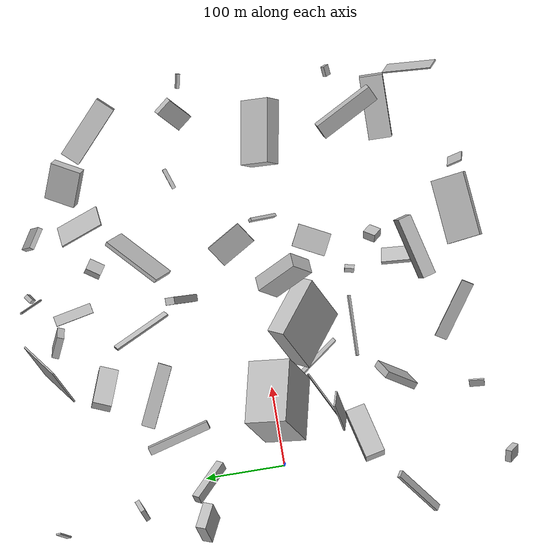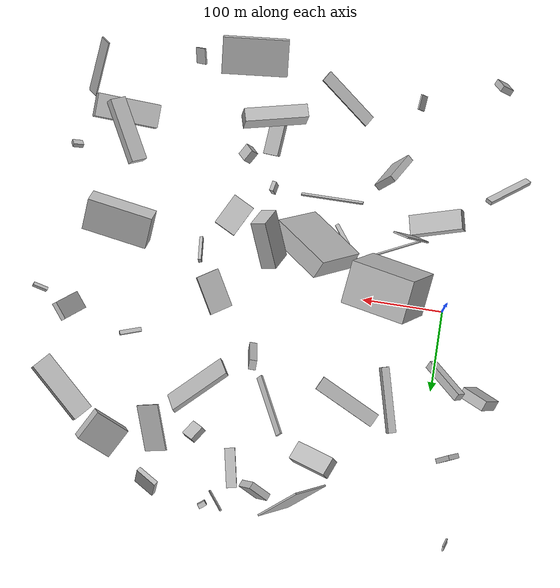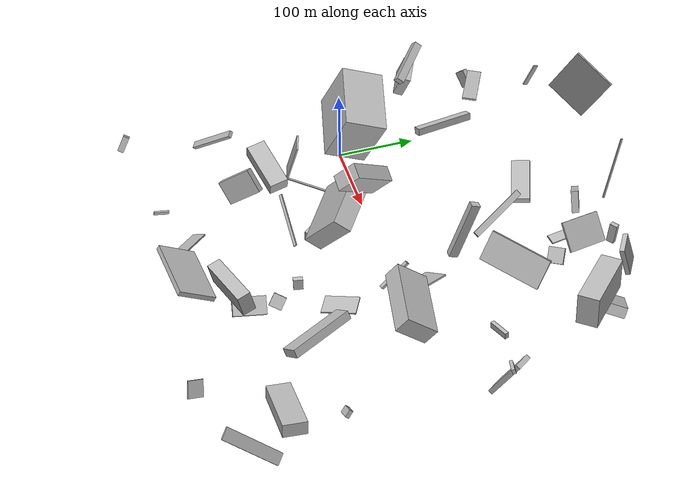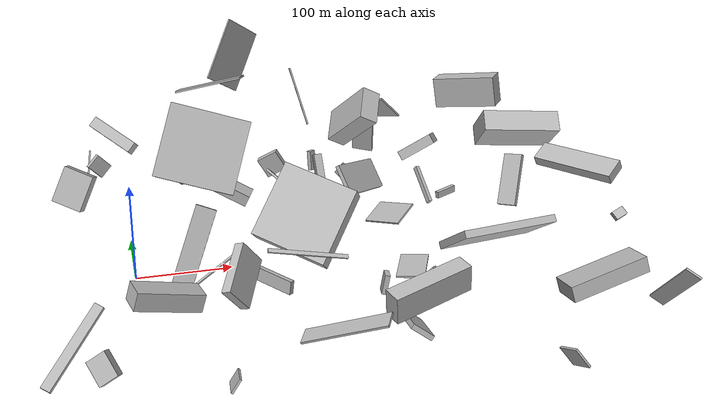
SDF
<sdf version="1.6">
 <world name="default">
  <scene>
   <sky><clouds><speed>12</speed></clouds></sky>
   <ambient>0.4 0.4 0.4 1</ambient>
   <background>0.7 0.7 0.7 1</background>
   <shadows>1</shadows>
  </scene>
  <gravity>0 0 -9.8066</gravity>
  <magnetic_field>6e-06 2.3e-05 -4.2e-05</magnetic_field>
  <physics default="0" name="default_physics" type="ode">
   <ode>
    <solver>
     <type>quick</type>
     <iters>10</iters>
     <sor>1.0</sor>
     <use_dynamic_moi_rescaling>0</use_dynamic_moi_rescaling>
    </solver>
    <constraints>
     <cfm>0</cfm>
     <erp>0.2</erp>
     <contact_max_correcting_vel>100</contact_max_correcting_vel>
     <contact_surface_layer>0.001</contact_surface_layer>
    </constraints>
   </ode>
   <max_step_size>0.004</max_step_size>
   <real_time_factor>1</real_time_factor>
   <real_time_update_rate>250</real_time_update_rate>
  </physics>
  <light name="sun" type="directional">
   <pose>0 0 10 0 0 0</pose>
   <diffuse>0.8 0.8 0.8 1</diffuse>
   <specular>0.2 0.2 0.2 1</specular>
   <attenuation>
    <range>1000</range>
    <constant>0.9</constant>
    <linear>0.01</linear>
    <quadratic>0.001</quadratic>
   </attenuation>
   <direction>-0.5 0.1 -0.9</direction>
  </light>
  <model name="building_1">
   <static>0</static>
   <pose>313.38678008430173 -254.48985213400707 126.91015554848485 -1.6174992288175958 -1.0033958308905082 1.7066076233967167</pose>
   <link name="link">
    <gravity>0</gravity>
    <pose>0 0 40.0 0 0 0</pose>
    <collision name="collision"><geometry><box><size>6 47 80</size></box></geometry></collision>
    <visual name="visual">
     <cast_shadows>0</cast_shadows>
     <geometry><box><size>6 47 80</size></box></geometry>
     <material>
      <script>
       <uri>model://HANNAS_wall/materials/scripts</uri>
       <uri>model://HANNAS_wall/materials/textures</uri>
       <name>vrc/HANNAS_wall</name>
      </script>
     </material>
    </visual>
   </link>
  </model>
  <model name="building_2">
   <static>0</static>
   <pose>189.07198185582254 255.71340585562427 38.7119897856422 2.623338071771381 -0.14274153359470498 1.1989524923729793</pose>
   <link name="link">
    <gravity>0</gravity>
    <pose>0 0 14.0 0 0 0</pose>
    <collision name="collision"><geometry><box><size>9 29 28</size></box></geometry></collision>
    <visual name="visual">
     <cast_shadows>0</cast_shadows>
     <geometry><box><size>9 29 28</size></box></geometry>
     <material>
      <script>
       <uri>model://HANNAS_wall/materials/scripts</uri>
       <uri>model://HANNAS_wall/materials/textures</uri>
       <name>vrc/HANNAS_wall</name>
      </script>
     </material>
    </visual>
   </link>
  </model>
  <model name="building_3">
   <static>0</static>
   <pose>306.4584908235336 -21.08625321111493 80.87632959975596 -1.3534454656551769 -0.7320955252246922 1.6903356660979636</pose>
   <link name="link">
    <gravity>0</gravity>
    <pose>0 0 2.0 0 0 0</pose>
    <collision name="collision"><geometry><box><size>43 5 4</size></box></geometry></collision>
    <visual name="visual">
     <cast_shadows>0</cast_shadows>
     <geometry><box><size>43 5 4</size></box></geometry>
     <material>
      <script>
       <uri>model://HANNAS_wall/materials/scripts</uri>
       <uri>model://HANNAS_wall/materials/textures</uri>
       <name>vrc/HANNAS_wall</name>
      </script>
     </material>
    </visual>
   </link>
  </model>
  <model name="building_4">
   <static>0</static>
   <pose>253.33169940922437 278.28562710872995 17.74672666985825 -1.5945039488954331 -0.09860270961424619 -0.9369168461052667</pose>
   <link name="link">
    <gravity>0</gravity>
    <pose>0 0 5.0 0 0 0</pose>
    <collision name="collision"><geometry><box><size>6 27 10</size></box></geometry></collision>
    <visual name="visual">
     <cast_shadows>0</cast_shadows>
     <geometry><box><size>6 27 10</size></box></geometry>
     <material>
      <script>
       <uri>model://HANNAS_wall/materials/scripts</uri>
       <uri>model://HANNAS_wall/materials/textures</uri>
       <name>vrc/HANNAS_wall</name>
      </script>
     </material>
    </visual>
   </link>
  </model>
  <model name="building_5">
   <static>0</static>
   <pose>318.47068302941113 229.1182640378743 102.63785949366425 -1.2759865127433951 -0.7641971097434028 -3.0144752923157196</pose>
   <link name="link">
    <gravity>0</gravity>
    <pose>0 0 28.0 0 0 0</pose>
    <collision name="collision"><geometry><box><size>36 2 56</size></box></geometry></collision>
    <visual name="visual">
     <cast_shadows>0</cast_shadows>
     <geometry><box><size>36 2 56</size></box></geometry>
     <material>
      <script>
       <uri>model://HANNAS_wall/materials/scripts</uri>
       <uri>model://HANNAS_wall/materials/textures</uri>
       <name>vrc/HANNAS_wall</name>
      </script>
     </material>
    </visual>
   </link>
  </model>
  <model name="building_6">
   <static>0</static>
   <pose>-21.868369431119667 185.82899050833964 57.83750127446497 0.02677539269869438 0.7593471859122363 -2.727455536637141</pose>
   <link name="link">
    <gravity>0</gravity>
    <pose>0 0 11.0 0 0 0</pose>
    <collision name="collision"><geometry><box><size>18 6 22</size></box></geometry></collision>
    <visual name="visual">
     <cast_shadows>0</cast_shadows>
     <geometry><box><size>18 6 22</size></box></geometry>
     <material>
      <script>
       <uri>model://HANNAS_wall/materials/scripts</uri>
       <uri>model://HANNAS_wall/materials/textures</uri>
       <name>vrc/HANNAS_wall</name>
      </script>
     </material>
    </visual>
   </link>
  </model>
  <model name="building_7">
   <static>0</static>
   <pose>442.63330081987834 172.85096401872752 112.97388714703493 0.08555092424264979 -0.1288856857406769 -0.7438257706560473</pose>
   <link name="link">
    <gravity>0</gravity>
    <pose>0 0 19.0 0 0 0</pose>
    <collision name="collision"><geometry><box><size>80 25 38</size></box></geometry></collision>
    <visual name="visual">
     <cast_shadows>0</cast_shadows>
     <geometry><box><size>80 25 38</size></box></geometry>
     <material>
      <script>
       <uri>model://HANNAS_wall/materials/scripts</uri>
       <uri>model://HANNAS_wall/materials/textures</uri>
       <name>vrc/HANNAS_wall</name>
      </script>
     </material>
    </visual>
   </link>
  </model>
  <model name="building_8">
   <static>0</static>
   <pose>471.8178938001716 -238.64342906525903 36.4123643415191 0.9702653959407878 0.5888443904735355 -2.6485370523996083</pose>
   <link name="link">
    <gravity>0</gravity>
    <pose>0 0 7.5 0 0 0</pose>
    <collision name="collision"><geometry><box><size>2 80 15</size></box></geometry></collision>
    <visual name="visual">
     <cast_shadows>0</cast_shadows>
     <geometry><box><size>2 80 15</size></box></geometry>
     <material>
      <script>
       <uri>model://HANNAS_wall/materials/scripts</uri>
       <uri>model://HANNAS_wall/materials/textures</uri>
       <name>vrc/HANNAS_wall</name>
      </script>
     </material>
    </visual>
   </link>
  </model>
  <model name="building_9">
   <static>0</static>
   <pose>286.4532724408881 -85.41243113291745 16.489386087722007 2.1388694039145526 -1.4249600602749957 -2.603537817236209</pose>
   <link name="link">
    <gravity>0</gravity>
    <pose>0 0 14.5 0 0 0</pose>
    <collision name="collision"><geometry><box><size>2 43 29</size></box></geometry></collision>
    <visual name="visual">
     <cast_shadows>0</cast_shadows>
     <geometry><box><size>2 43 29</size></box></geometry>
     <material>
      <script>
       <uri>model://HANNAS_wall/materials/scripts</uri>
       <uri>model://HANNAS_wall/materials/textures</uri>
       <name>vrc/HANNAS_wall</name>
      </script>
     </material>
    </visual>
   </link>
  </model>
  <model name="building_10">
   <static>0</static>
   <pose>123.40587110093242 -52.713567831032705 14.077043574792832 1.5080179528663753 0.07620571085391101 -0.9334189542115972</pose>
   <link name="link">
    <gravity>0</gravity>
    <pose>0 0 2.5 0 0 0</pose>
    <collision name="collision"><geometry><box><size>80 14 5</size></box></geometry></collision>
    <visual name="visual">
     <cast_shadows>0</cast_shadows>
     <geometry><box><size>80 14 5</size></box></geometry>
     <material>
      <script>
       <uri>model://HANNAS_wall/materials/scripts</uri>
       <uri>model://HANNAS_wall/materials/textures</uri>
       <name>vrc/HANNAS_wall</name>
      </script>
     </material>
    </visual>
   </link>
  </model>
  <model name="building_11">
   <static>0</static>
   <pose>199.72891257603797 -73.47551524046322 60.81330558832971 1.2435546897857344 -0.5911193274625838 -2.031501913786642</pose>
   <link name="link">
    <gravity>0</gravity>
    <pose>0 0 40.0 0 0 0</pose>
    <collision name="collision"><geometry><box><size>24 80 80</size></box></geometry></collision>
    <visual name="visual">
     <cast_shadows>0</cast_shadows>
     <geometry><box><size>24 80 80</size></box></geometry>
     <material>
      <script>
       <uri>model://HANNAS_wall/materials/scripts</uri>
       <uri>model://HANNAS_wall/materials/textures</uri>
       <name>vrc/HANNAS_wall</name>
      </script>
     </material>
    </visual>
   </link>
  </model>
  <model name="building_12">
   <static>0</static>
   <pose>230.05774418630736 231.1952247587161 4.9190191006714405 3.10662761970378 0.1450561414326132 0.19574620029137296</pose>
   <link name="link">
    <gravity>0</gravity>
    <pose>0 0 1.0 0 0 0</pose>
    <collision name="collision"><geometry><box><size>13 49 2</size></box></geometry></collision>
    <visual name="visual">
     <cast_shadows>0</cast_shadows>
     <geometry><box><size>13 49 2</size></box></geometry>
     <material>
      <script>
       <uri>model://HANNAS_wall/materials/scripts</uri>
       <uri>model://HANNAS_wall/materials/textures</uri>
       <name>vrc/HANNAS_wall</name>
      </script>
     </material>
    </visual>
   </link>
  </model>
  <model name="building_13">
   <static>0</static>
   <pose>-34.92148071167301 -138.92694742906292 43.86288078790443 -2.622829835029256 0.7759634595726688 1.3937473534642884</pose>
   <link name="link">
    <gravity>0</gravity>
    <pose>0 0 40.0 0 0 0</pose>
    <collision name="collision"><geometry><box><size>5 9 80</size></box></geometry></collision>
    <visual name="visual">
     <cast_shadows>0</cast_shadows>
     <geometry><box><size>5 9 80</size></box></geometry>
     <material>
      <script>
       <uri>model://HANNAS_wall/materials/scripts</uri>
       <uri>model://HANNAS_wall/materials/textures</uri>
       <name>vrc/HANNAS_wall</name>
      </script>
     </material>
    </visual>
   </link>
  </model>
  <model name="building_14">
   <static>0</static>
   <pose>377.6782515310232 85.11103318156385 24.283998870786235 0.011461690879111246 0.12714773910609786 -2.8065199835322976</pose>
   <link name="link">
    <gravity>0</gravity>
    <pose>0 0 4.0 0 0 0</pose>
    <collision name="collision"><geometry><box><size>27 5 8</size></box></geometry></collision>
    <visual name="visual">
     <cast_shadows>0</cast_shadows>
     <geometry><box><size>27 5 8</size></box></geometry>
     <material>
      <script>
       <uri>model://HANNAS_wall/materials/scripts</uri>
       <uri>model://HANNAS_wall/materials/textures</uri>
       <name>vrc/HANNAS_wall</name>
      </script>
     </material>
    </visual>
   </link>
  </model>
  <model name="building_15">
   <static>0</static>
   <pose>239.52830873587652 -183.0617609934276 11.59585882392893 -2.5204358621663787 0.131509496206748 1.486346723065243</pose>
   <link name="link">
    <gravity>0</gravity>
    <pose>0 0 2.5 0 0 0</pose>
    <collision name="collision"><geometry><box><size>42 23 5</size></box></geometry></collision>
    <visual name="visual">
     <cast_shadows>0</cast_shadows>
     <geometry><box><size>42 23 5</size></box></geometry>
     <material>
      <script>
       <uri>model://HANNAS_wall/materials/scripts</uri>
       <uri>model://HANNAS_wall/materials/textures</uri>
       <name>vrc/HANNAS_wall</name>
      </script>
     </material>
    </visual>
   </link>
  </model>
  <model name="building_16">
   <static>0</static>
   <pose>243.46197132109359 -211.23453221846603 51.626330071608606 1.4128169410751563 0.16181534173899986 -2.8873493295197514</pose>
   <link name="link">
    <gravity>0</gravity>
    <pose>0 0 8.5 0 0 0</pose>
    <collision name="collision"><geometry><box><size>79 26 17</size></box></geometry></collision>
    <visual name="visual">
     <cast_shadows>0</cast_shadows>
     <geometry><box><size>79 26 17</size></box></geometry>
     <material>
      <script>
       <uri>model://HANNAS_wall/materials/scripts</uri>
       <uri>model://HANNAS_wall/materials/textures</uri>
       <name>vrc/HANNAS_wall</name>
      </script>
     </material>
    </visual>
   </link>
  </model>
  <model name="building_17">
   <static>0</static>
   <pose>223.6003781196642 99.58284574642441 42.74951004436638 1.2077617133991703 -0.07488109468479746 -0.008125850278232241</pose>
   <link name="link">
    <gravity>0</gravity>
    <pose>0 0 6.0 0 0 0</pose>
    <collision name="collision"><geometry><box><size>9 80 12</size></box></geometry></collision>
    <visual name="visual">
     <cast_shadows>0</cast_shadows>
     <geometry><box><size>9 80 12</size></box></geometry>
     <material>
      <script>
       <uri>model://HANNAS_wall/materials/scripts</uri>
       <uri>model://HANNAS_wall/materials/textures</uri>
       <name>vrc/HANNAS_wall</name>
      </script>
     </material>
    </visual>
   </link>
  </model>
  <model name="building_18">
   <static>0</static>
   <pose>63.65990666418977 -253.26910688509724 23.041309591342 -0.17519778998963478 -0.9840649676782839 0.05167128852403094</pose>
   <link name="link">
    <gravity>0</gravity>
    <pose>0 0 1.0 0 0 0</pose>
    <collision name="collision"><geometry><box><size>13 19 2</size></box></geometry></collision>
    <visual name="visual">
     <cast_shadows>0</cast_shadows>
     <geometry><box><size>13 19 2</size></box></geometry>
     <material>
      <script>
       <uri>model://HANNAS_wall/materials/scripts</uri>
       <uri>model://HANNAS_wall/materials/textures</uri>
       <name>vrc/HANNAS_wall</name>
      </script>
     </material>
    </visual>
   </link>
  </model>
  <model name="building_19">
   <static>0</static>
   <pose>98.40704955434103 134.24463119517247 167.65476911209763 1.6236507803480862 0.24952533776657626 2.7031933709431617</pose>
   <link name="link">
    <gravity>0</gravity>
    <pose>0 0 8.5 0 0 0</pose>
    <collision name="collision"><geometry><box><size>80 2 17</size></box></geometry></collision>
    <visual name="visual">
     <cast_shadows>0</cast_shadows>
     <geometry><box><size>80 2 17</size></box></geometry>
     <material>
      <script>
       <uri>model://HANNAS_wall/materials/scripts</uri>
       <uri>model://HANNAS_wall/materials/textures</uri>
       <name>vrc/HANNAS_wall</name>
      </script>
     </material>
    </visual>
   </link>
  </model>
  <model name="building_20">
   <static>0</static>
   <pose>155.89448806339774 -112.78111290986652 55.97550788040711 0.26843606063470304 0.7848730179395149 1.7343534618981165</pose>
   <link name="link">
    <gravity>0</gravity>
    <pose>0 0 2.0 0 0 0</pose>
    <collision name="collision"><geometry><box><size>2 78 4</size></box></geometry></collision>
    <visual name="visual">
     <cast_shadows>0</cast_shadows>
     <geometry><box><size>2 78 4</size></box></geometry>
     <material>
      <script>
       <uri>model://HANNAS_wall/materials/scripts</uri>
       <uri>model://HANNAS_wall/materials/textures</uri>
       <name>vrc/HANNAS_wall</name>
      </script>
     </material>
    </visual>
   </link>
  </model>
  <model name="building_21">
   <static>0</static>
   <pose>285.9164220101037 137.9220818437562 39.2514335063976 -2.860023643174797 -0.9613006440759126 2.08482986762446</pose>
   <link name="link">
    <gravity>0</gravity>
    <pose>0 0 2.5 0 0 0</pose>
    <collision name="collision"><geometry><box><size>39 80 5</size></box></geometry></collision>
    <visual name="visual">
     <cast_shadows>0</cast_shadows>
     <geometry><box><size>39 80 5</size></box></geometry>
     <material>
      <script>
       <uri>model://HANNAS_wall/materials/scripts</uri>
       <uri>model://HANNAS_wall/materials/textures</uri>
       <name>vrc/HANNAS_wall</name>
      </script>
     </material>
    </visual>
   </link>
  </model>
  <model name="building_22">
   <static>0</static>
   <pose>401.75677599105325 -41.137105253415506 130.987649907368 -0.05425650837436609 -0.6734565349906608 -1.702258437416598</pose>
   <link name="link">
    <gravity>0</gravity>
    <pose>0 0 11.0 0 0 0</pose>
    <collision name="collision"><geometry><box><size>42 80 22</size></box></geometry></collision>
    <visual name="visual">
     <cast_shadows>0</cast_shadows>
     <geometry><box><size>42 80 22</size></box></geometry>
     <material>
      <script>
       <uri>model://HANNAS_wall/materials/scripts</uri>
       <uri>model://HANNAS_wall/materials/textures</uri>
       <name>vrc/HANNAS_wall</name>
      </script>
     </material>
    </visual>
   </link>
  </model>
  <model name="building_23">
   <static>0</static>
   <pose>77.21261901420195 -170.72356568904638 48.86573082531721 -0.901896430130278 -0.2814118170873162 -0.708420381271941</pose>
   <link name="link">
    <gravity>0</gravity>
    <pose>0 0 24.0 0 0 0</pose>
    <collision name="collision"><geometry><box><size>9 31 48</size></box></geometry></collision>
    <visual name="visual">
     <cast_shadows>0</cast_shadows>
     <geometry><box><size>9 31 48</size></box></geometry>
     <material>
      <script>
       <uri>model://HANNAS_wall/materials/scripts</uri>
       <uri>model://HANNAS_wall/materials/textures</uri>
       <name>vrc/HANNAS_wall</name>
      </script>
     </material>
    </visual>
   </link>
  </model>
  <model name="building_24">
   <static>0</static>
   <pose>-8.01490002819843 99.64242428832165 124.41352056002704 0.6196268383831829 -0.8237805786947864 0.3287411437335631</pose>
   <link name="link">
    <gravity>0</gravity>
    <pose>0 0 5.0 0 0 0</pose>
    <collision name="collision"><geometry><box><size>12 57 10</size></box></geometry></collision>
    <visual name="visual">
     <cast_shadows>0</cast_shadows>
     <geometry><box><size>12 57 10</size></box></geometry>
     <material>
      <script>
       <uri>model://HANNAS_wall/materials/scripts</uri>
       <uri>model://HANNAS_wall/materials/textures</uri>
       <name>vrc/HANNAS_wall</name>
      </script>
     </material>
    </visual>
   </link>
  </model>
  <model name="building_25">
   <static>0</static>
   <pose>44.30492798574711 -75.30656715670752 64.92087485749468 1.8918132466859292 0.1984789074312702 1.3450091772138302</pose>
   <link name="link">
    <gravity>0</gravity>
    <pose>0 0 10.0 0 0 0</pose>
    <collision name="collision"><geometry><box><size>2 80 20</size></box></geometry></collision>
    <visual name="visual">
     <cast_shadows>0</cast_shadows>
     <geometry><box><size>2 80 20</size></box></geometry>
     <material>
      <script>
       <uri>model://HANNAS_wall/materials/scripts</uri>
       <uri>model://HANNAS_wall/materials/textures</uri>
       <name>vrc/HANNAS_wall</name>
      </script>
     </material>
    </visual>
   </link>
  </model>
  <model name="building_26">
   <static>0</static>
   <pose>329.0540158556979 271.00535390283153 32.07375371198009 0.08332705282022317 -0.2760043556049117 0.9959085498822235</pose>
   <link name="link">
    <gravity>0</gravity>
    <pose>0 0 21.0 0 0 0</pose>
    <collision name="collision"><geometry><box><size>6 28 42</size></box></geometry></collision>
    <visual name="visual">
     <cast_shadows>0</cast_shadows>
     <geometry><box><size>6 28 42</size></box></geometry>
     <material>
      <script>
       <uri>model://HANNAS_wall/materials/scripts</uri>
       <uri>model://HANNAS_wall/materials/textures</uri>
       <name>vrc/HANNAS_wall</name>
      </script>
     </material>
    </visual>
   </link>
  </model>
  <model name="building_27">
   <static>0</static>
   <pose>62.435593091764495 -13.442950284058504 99.80093830004631 -0.2879670660558812 -0.3536180097075542 -1.6951721805279842</pose>
   <link name="link">
    <gravity>0</gravity>
    <pose>0 0 37.0 0 0 0</pose>
    <collision name="collision"><geometry><box><size>53 80 74</size></box></geometry></collision>
    <visual name="visual">
     <cast_shadows>0</cast_shadows>
     <geometry><box><size>53 80 74</size></box></geometry>
     <material>
      <script>
       <uri>model://HANNAS_wall/materials/scripts</uri>
       <uri>model://HANNAS_wall/materials/textures</uri>
       <name>vrc/HANNAS_wall</name>
      </script>
     </material>
    </visual>
   </link>
  </model>
  <model name="building_28">
   <static>0</static>
   <pose>286.21149588731146 203.65623511526167 25.94101975856451 1.6819577672247021 -0.821837524628581 -0.6691175570105382</pose>
   <link name="link">
    <gravity>0</gravity>
    <pose>0 0 10.0 0 0 0</pose>
    <collision name="collision"><geometry><box><size>8 20 20</size></box></geometry></collision>
    <visual name="visual">
     <cast_shadows>0</cast_shadows>
     <geometry><box><size>8 20 20</size></box></geometry>
     <material>
      <script>
       <uri>model://HANNAS_wall/materials/scripts</uri>
       <uri>model://HANNAS_wall/materials/textures</uri>
       <name>vrc/HANNAS_wall</name>
      </script>
     </material>
    </visual>
   </link>
  </model>
  <model name="building_29">
   <static>0</static>
   <pose>282.0785779798872 21.68393730292842 35.21546620111236 2.9077052312458704 -0.4515449359856227 0.6240683872111906</pose>
   <link name="link">
    <gravity>0</gravity>
    <pose>0 0 1.0 0 0 0</pose>
    <collision name="collision"><geometry><box><size>32 49 2</size></box></geometry></collision>
    <visual name="visual">
     <cast_shadows>0</cast_shadows>
     <geometry><box><size>32 49 2</size></box></geometry>
     <material>
      <script>
       <uri>model://HANNAS_wall/materials/scripts</uri>
       <uri>model://HANNAS_wall/materials/textures</uri>
       <name>vrc/HANNAS_wall</name>
      </script>
     </material>
    </visual>
   </link>
  </model>
  <model name="building_30">
   <static>0</static>
   <pose>399.9991126436767 231.94176356960747 42.5154752954946 1.3275783376693961 -0.5651045905360303 -0.38289687191155536</pose>
   <link name="link">
    <gravity>0</gravity>
    <pose>0 0 20.0 0 0 0</pose>
    <collision name="collision"><geometry><box><size>49 13 40</size></box></geometry></collision>
    <visual name="visual">
     <cast_shadows>0</cast_shadows>
     <geometry><box><size>49 13 40</size></box></geometry>
     <material>
      <script>
       <uri>model://HANNAS_wall/materials/scripts</uri>
       <uri>model://HANNAS_wall/materials/textures</uri>
       <name>vrc/HANNAS_wall</name>
      </script>
     </material>
    </visual>
   </link>
  </model>
  <model name="building_31">
   <static>0</static>
   <pose>-54.2048028450575 111.91317342891521 64.74163169435218 1.2590407842783207 0.3341080335124568 -0.45600317696966114</pose>
   <link name="link">
    <gravity>0</gravity>
    <pose>0 0 6.5 0 0 0</pose>
    <collision name="collision"><geometry><box><size>34 41 13</size></box></geometry></collision>
    <visual name="visual">
     <cast_shadows>0</cast_shadows>
     <geometry><box><size>34 41 13</size></box></geometry>
     <material>
      <script>
       <uri>model://HANNAS_wall/materials/scripts</uri>
       <uri>model://HANNAS_wall/materials/textures</uri>
       <name>vrc/HANNAS_wall</name>
      </script>
     </material>
    </visual>
   </link>
  </model>
  <model name="building_32">
   <static>0</static>
   <pose>212.54903195259914 -11.409647763762043 147.83956098155016 -0.8908505283178418 -0.44875865079333943 -3.072860554249095</pose>
   <link name="link">
    <gravity>0</gravity>
    <pose>0 0 30.5 0 0 0</pose>
    <collision name="collision"><geometry><box><size>19 33 61</size></box></geometry></collision>
    <visual name="visual">
     <cast_shadows>0</cast_shadows>
     <geometry><box><size>19 33 61</size></box></geometry>
     <material>
      <script>
       <uri>model://HANNAS_wall/materials/scripts</uri>
       <uri>model://HANNAS_wall/materials/textures</uri>
       <name>vrc/HANNAS_wall</name>
      </script>
     </material>
    </visual>
   </link>
  </model>
  <model name="building_33">
   <static>0</static>
   <pose>132.16328008160764 256.7910337332479 139.40605593001408 0.48453029920778656 -0.06239120437079675 2.1888619303966887</pose>
   <link name="link">
    <gravity>0</gravity>
    <pose>0 0 40.0 0 0 0</pose>
    <collision name="collision"><geometry><box><size>2 56 80</size></box></geometry></collision>
    <visual name="visual">
     <cast_shadows>0</cast_shadows>
     <geometry><box><size>2 56 80</size></box></geometry>
     <material>
      <script>
       <uri>model://HANNAS_wall/materials/scripts</uri>
       <uri>model://HANNAS_wall/materials/textures</uri>
       <name>vrc/HANNAS_wall</name>
      </script>
     </material>
    </visual>
   </link>
  </model>
  <model name="building_34">
   <static>0</static>
   <pose>63.01818838262228 85.93316415111666 73.35893613515147 1.9325879501486796 -1.2575198048926224 3.0550571867386807</pose>
   <link name="link">
    <gravity>0</gravity>
    <pose>0 0 40.0 0 0 0</pose>
    <collision name="collision"><geometry><box><size>9 10 80</size></box></geometry></collision>
    <visual name="visual">
     <cast_shadows>0</cast_shadows>
     <geometry><box><size>9 10 80</size></box></geometry>
     <material>
      <script>
       <uri>model://HANNAS_wall/materials/scripts</uri>
       <uri>model://HANNAS_wall/materials/textures</uri>
       <name>vrc/HANNAS_wall</name>
      </script>
     </material>
    </visual>
   </link>
  </model>
  <model name="building_35">
   <static>0</static>
   <pose>232.33579806427966 -120.07224204952284 21.344028487034482 0.07415144584649164 -1.4079034378385542 -0.27336557872994344</pose>
   <link name="link">
    <gravity>0</gravity>
    <pose>0 0 2.5 0 0 0</pose>
    <collision name="collision"><geometry><box><size>20 12 5</size></box></geometry></collision>
    <visual name="visual">
     <cast_shadows>0</cast_shadows>
     <geometry><box><size>20 12 5</size></box></geometry>
     <material>
      <script>
       <uri>model://HANNAS_wall/materials/scripts</uri>
       <uri>model://HANNAS_wall/materials/textures</uri>
       <name>vrc/HANNAS_wall</name>
      </script>
     </material>
    </visual>
   </link>
  </model>
  <model name="building_36">
   <static>0</static>
   <pose>248.4750026115073 265.8110775825321 74.58250950948677 0.2608740934720991 -0.2883683527242156 -1.6497216960150831</pose>
   <link name="link">
    <gravity>0</gravity>
    <pose>0 0 40.0 0 0 0</pose>
    <collision name="collision"><geometry><box><size>2 2 80</size></box></geometry></collision>
    <visual name="visual">
     <cast_shadows>0</cast_shadows>
     <geometry><box><size>2 2 80</size></box></geometry>
     <material>
      <script>
       <uri>model://HANNAS_wall/materials/scripts</uri>
       <uri>model://HANNAS_wall/materials/textures</uri>
       <name>vrc/HANNAS_wall</name>
      </script>
     </material>
    </visual>
   </link>
  </model>
  <model name="building_37">
   <static>0</static>
   <pose>271.02654233635303 -154.85067236565965 42.76333204795393 2.418727201538304 -0.3392336343462551 -2.1385163604333686</pose>
   <link name="link">
    <gravity>0</gravity>
    <pose>0 0 5.5 0 0 0</pose>
    <collision name="collision"><geometry><box><size>16 16 11</size></box></geometry></collision>
    <visual name="visual">
     <cast_shadows>0</cast_shadows>
     <geometry><box><size>16 16 11</size></box></geometry>
     <material>
      <script>
       <uri>model://HANNAS_wall/materials/scripts</uri>
       <uri>model://HANNAS_wall/materials/textures</uri>
       <name>vrc/HANNAS_wall</name>
      </script>
     </material>
    </visual>
   </link>
  </model>
  <model name="building_38">
   <static>0</static>
   <pose>106.16016736802781 -46.42167626666229 42.61650600598818 2.3169065875825177 -1.0454456820700468 -1.7560346188226172</pose>
   <link name="link">
    <gravity>0</gravity>
    <pose>0 0 40.0 0 0 0</pose>
    <collision name="collision"><geometry><box><size>2 2 80</size></box></geometry></collision>
    <visual name="visual">
     <cast_shadows>0</cast_shadows>
     <geometry><box><size>2 2 80</size></box></geometry>
     <material>
      <script>
       <uri>model://HANNAS_wall/materials/scripts</uri>
       <uri>model://HANNAS_wall/materials/textures</uri>
       <name>vrc/HANNAS_wall</name>
      </script>
     </material>
    </visual>
   </link>
  </model>
  <model name="building_39">
   <static>0</static>
   <pose>424.99113151203915 -170.7448674268107 34.10228433201267 -1.2405564827631665 -1.278206235919696 2.8000271081004575</pose>
   <link name="link">
    <gravity>0</gravity>
    <pose>0 0 14.5 0 0 0</pose>
    <collision name="collision"><geometry><box><size>16 80 29</size></box></geometry></collision>
    <visual name="visual">
     <cast_shadows>0</cast_shadows>
     <geometry><box><size>16 80 29</size></box></geometry>
     <material>
      <script>
       <uri>model://HANNAS_wall/materials/scripts</uri>
       <uri>model://HANNAS_wall/materials/textures</uri>
       <name>vrc/HANNAS_wall</name>
      </script>
     </material>
    </visual>
   </link>
  </model>
  <model name="building_40">
   <static>0</static>
   <pose>108.72017440235123 214.48000694724672 24.874371207933592 2.0376925217491966 -0.09044131643290404 1.1898666862158116</pose>
   <link name="link">
    <gravity>0</gravity>
    <pose>0 0 26.5 0 0 0</pose>
    <collision name="collision"><geometry><box><size>24 15 53</size></box></geometry></collision>
    <visual name="visual">
     <cast_shadows>0</cast_shadows>
     <geometry><box><size>24 15 53</size></box></geometry>
     <material>
      <script>
       <uri>model://HANNAS_wall/materials/scripts</uri>
       <uri>model://HANNAS_wall/materials/textures</uri>
       <name>vrc/HANNAS_wall</name>
      </script>
     </material>
    </visual>
   </link>
  </model>
  <model name="building_41">
   <static>0</static>
   <pose>414.2609183512816 -142.35584255660035 130.9878572879742 0.5735989863271668 -0.00225502234836668 -1.078982800655639</pose>
   <link name="link">
    <gravity>0</gravity>
    <pose>0 0 5.0 0 0 0</pose>
    <collision name="collision"><geometry><box><size>80 21 10</size></box></geometry></collision>
    <visual name="visual">
     <cast_shadows>0</cast_shadows>
     <geometry><box><size>80 21 10</size></box></geometry>
     <material>
      <script>
       <uri>model://HANNAS_wall/materials/scripts</uri>
       <uri>model://HANNAS_wall/materials/textures</uri>
       <name>vrc/HANNAS_wall</name>
      </script>
     </material>
    </visual>
   </link>
  </model>
  <model name="building_42">
   <static>0</static>
   <pose>-43.52872088383614 285.5186664747989 36.79185051818884 1.722419592822827 0.3213421637673837 1.5986645627673042</pose>
   <link name="link">
    <gravity>0</gravity>
    <pose>0 0 1.0 0 0 0</pose>
    <collision name="collision"><geometry><box><size>6 36 2</size></box></geometry></collision>
    <visual name="visual">
     <cast_shadows>0</cast_shadows>
     <geometry><box><size>6 36 2</size></box></geometry>
     <material>
      <script>
       <uri>model://HANNAS_wall/materials/scripts</uri>
       <uri>model://HANNAS_wall/materials/textures</uri>
       <name>vrc/HANNAS_wall</name>
      </script>
     </material>
    </visual>
   </link>
  </model>
  <model name="building_43">
   <static>0</static>
   <pose>54.30476817832902 -97.69826619440565 18.6728333094565 1.2986109196819497 0.06635721103000623 -1.3514614093089734</pose>
   <link name="link">
    <gravity>0</gravity>
    <pose>0 0 33.0 0 0 0</pose>
    <collision name="collision"><geometry><box><size>25 18 66</size></box></geometry></collision>
    <visual name="visual">
     <cast_shadows>0</cast_shadows>
     <geometry><box><size>25 18 66</size></box></geometry>
     <material>
      <script>
       <uri>model://HANNAS_wall/materials/scripts</uri>
       <uri>model://HANNAS_wall/materials/textures</uri>
       <name>vrc/HANNAS_wall</name>
      </script>
     </material>
    </visual>
   </link>
  </model>
  <model name="building_44">
   <static>0</static>
   <pose>339.4140561695797 -271.34567133971336 18.750474977150397 -2.5694665795533993 -0.35971910806991453 -1.3574846872291206</pose>
   <link name="link">
    <gravity>0</gravity>
    <pose>0 0 10.5 0 0 0</pose>
    <collision name="collision"><geometry><box><size>20 2 21</size></box></geometry></collision>
    <visual name="visual">
     <cast_shadows>0</cast_shadows>
     <geometry><box><size>20 2 21</size></box></geometry>
     <material>
      <script>
       <uri>model://HANNAS_wall/materials/scripts</uri>
       <uri>model://HANNAS_wall/materials/textures</uri>
       <name>vrc/HANNAS_wall</name>
      </script>
     </material>
    </visual>
   </link>
  </model>
  <model name="building_45">
   <static>0</static>
   <pose>-33.76922569077708 -282.200689388495 67.50959386745161 -2.0423936090062247 -0.5877086668636322 -0.178380447541067</pose>
   <link name="link">
    <gravity>0</gravity>
    <pose>0 0 4.0 0 0 0</pose>
    <collision name="collision"><geometry><box><size>16 20 8</size></box></geometry></collision>
    <visual name="visual">
     <cast_shadows>0</cast_shadows>
     <geometry><box><size>16 20 8</size></box></geometry>
     <material>
      <script>
       <uri>model://HANNAS_wall/materials/scripts</uri>
       <uri>model://HANNAS_wall/materials/textures</uri>
       <name>vrc/HANNAS_wall</name>
      </script>
     </material>
    </visual>
   </link>
  </model>
  <model name="building_46">
   <static>0</static>
   <pose>487.8084242600414 52.93442739560483 95.95082662800772 1.231784969144054 0.2717023684171228 2.92478517821761</pose>
   <link name="link">
    <gravity>0</gravity>
    <pose>0 0 2.0 0 0 0</pose>
    <collision name="collision"><geometry><box><size>18 6 4</size></box></geometry></collision>
    <visual name="visual">
     <cast_shadows>0</cast_shadows>
     <geometry><box><size>18 6 4</size></box></geometry>
     <material>
      <script>
       <uri>model://HANNAS_wall/materials/scripts</uri>
       <uri>model://HANNAS_wall/materials/textures</uri>
       <name>vrc/HANNAS_wall</name>
      </script>
     </material>
    </visual>
   </link>
  </model>
  <model name="building_47">
   <static>0</static>
   <pose>151.64802373255725 -245.84899505695756 45.67251664850579 0.9803551209863913 -1.109361910520512 -3.1184533487214563</pose>
   <link name="link">
    <gravity>0</gravity>
    <pose>0 0 8.0 0 0 0</pose>
    <collision name="collision"><geometry><box><size>2 80 16</size></box></geometry></collision>
    <visual name="visual">
     <cast_shadows>0</cast_shadows>
     <geometry><box><size>2 80 16</size></box></geometry>
     <material>
      <script>
       <uri>model://HANNAS_wall/materials/scripts</uri>
       <uri>model://HANNAS_wall/materials/textures</uri>
       <name>vrc/HANNAS_wall</name>
      </script>
     </material>
    </visual>
   </link>
  </model>
  <model name="building_48">
   <static>0</static>
   <pose>448.0952462383958 75.91525616073062 40.88990267611274 -1.4224023818225178 -0.45681837909055806 -2.5421248572710113</pose>
   <link name="link">
    <gravity>0</gravity>
    <pose>0 0 11.5 0 0 0</pose>
    <collision name="collision"><geometry><box><size>6 63 23</size></box></geometry></collision>
    <visual name="visual">
     <cast_shadows>0</cast_shadows>
     <geometry><box><size>6 63 23</size></box></geometry>
     <material>
      <script>
       <uri>model://HANNAS_wall/materials/scripts</uri>
       <uri>model://HANNAS_wall/materials/textures</uri>
       <name>vrc/HANNAS_wall</name>
      </script>
     </material>
    </visual>
   </link>
  </model>
  <model name="building_49">
   <static>0</static>
   <pose>195.10924849768452 150.1154445584918 30.83636912314408 -2.450031783091949 -0.2887271344688216 2.039169241804906</pose>
   <link name="link">
    <gravity>0</gravity>
    <pose>0 0 1.5 0 0 0</pose>
    <collision name="collision"><geometry><box><size>80 8 3</size></box></geometry></collision>
    <visual name="visual">
     <cast_shadows>0</cast_shadows>
     <geometry><box><size>80 8 3</size></box></geometry>
     <material>
      <script>
       <uri>model://HANNAS_wall/materials/scripts</uri>
       <uri>model://HANNAS_wall/materials/textures</uri>
       <name>vrc/HANNAS_wall</name>
      </script>
     </material>
    </visual>
   </link>
  </model>
  <model name="building_50">
   <static>0</static>
   <pose>474.97645574091115 -127.53099315627333 69.037834660364 -0.5318394840591124 -0.7028723067549167 2.058097936573357</pose>
   <link name="link">
    <gravity>0</gravity>
    <pose>0 0 2.5 0 0 0</pose>
    <collision name="collision"><geometry><box><size>9 13 5</size></box></geometry></collision>
    <visual name="visual">
     <cast_shadows>0</cast_shadows>
     <geometry><box><size>9 13 5</size></box></geometry>
     <material>
      <script>
       <uri>model://HANNAS_wall/materials/scripts</uri>
       <uri>model://HANNAS_wall/materials/textures</uri>
       <name>vrc/HANNAS_wall</name>
      </script>
     </material>
    </visual>
   </link>
  </model>
 </world>
</sdf>
